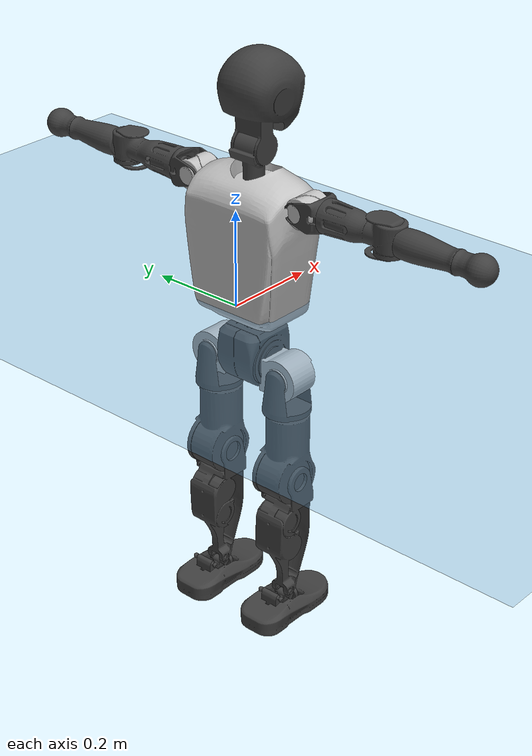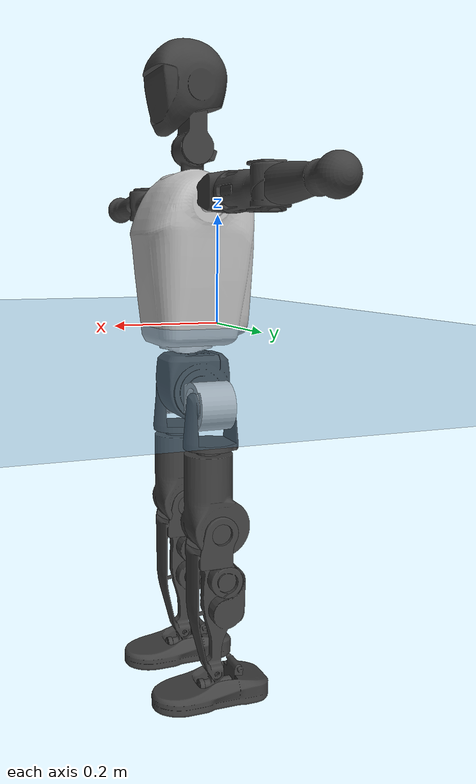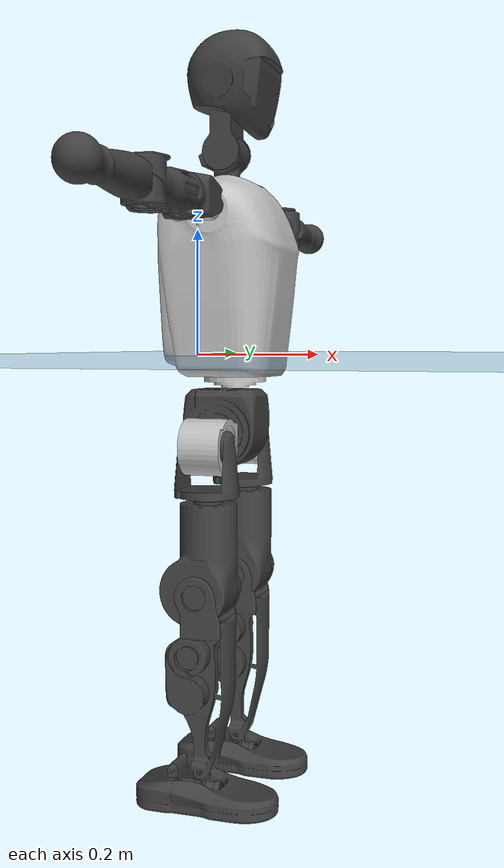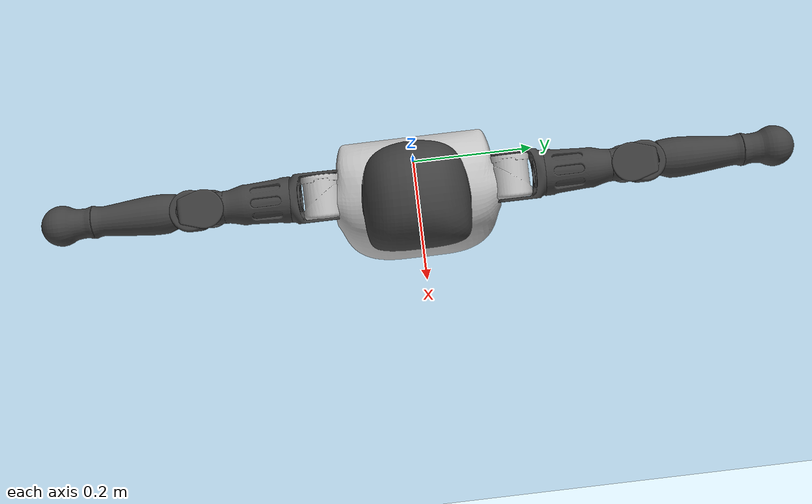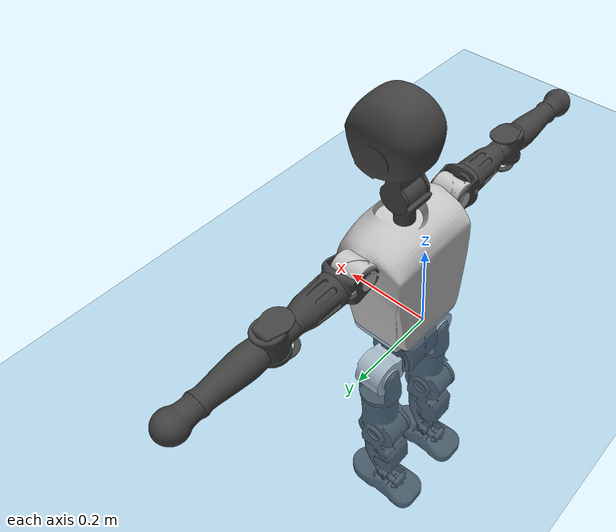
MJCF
<mujoco model="T1">
  <compiler angle="radian" assetdir="assets" balanceinertia="true" inertiafromgeom="false"/>

  <option timestep="0.005" density="1.2" viscosity="2e-05"/>

  <size nkey="1"/>

  <visual>
    <quality shadowsize="8192"/>
    <map shadowclip="0.5"/>
  </visual>

  <default>
    <default class="/">
      <joint armature="0.01" damping="0.01" frictionloss="0.1"/>
      <geom contype="0" conaffinity="0" group="1" solref="-1000 -80"/>
      <site size="0.01 0.005 0.005" group="5"/>
      <general forcelimited="true" biastype="affine" gainprm="25" biasprm="0 -25 -0.6"/>
      <default class="t1">
        <geom rgba="0.25 0.25 0.25 1"/>
        <default class="visual">
          <geom type="mesh" group="2"/>
        </default>
        <default class="collision">
          <geom group="3"/>
        </default>
        <default class="foot">
          <geom size="0.1115 0.05 0.015" type="box" condim="6" group="4" priority="1" solimp="0.015 1 0.015"/>
        </default>
        <default class="reward_collision_sphere">
          <geom group="5" rgba="1 0 0 1"/>
        </default>
      </default>
    </default>
  </default>

  <asset>
    <texture type="skybox" colorspace="auto" name="//unnamed_texture_0" builtin="gradient" rgb1="0.95 0.95 0.95" rgb2="0.95 0.95 0.95" width="100" height="600"/>
    <texture type="2d" colorspace="auto" name="texplane" builtin="checker" rgb1="0.345 0.575 0.748" rgb2="0.345 0.575 0.748" markrgb="1 1 1" width="512" height="512"/>
    <material name="MatPlane" class="/" texture="texplane" texuniform="true" texrepeat="2 2" specular="0.9"/>
    <mesh name="Trunk" class="/" file="Trunk.stl"/>
    <mesh name="H1" class="/" file="H1.stl"/>
    <mesh name="H2" class="/" file="H2.stl"/>
    <mesh name="AL1" class="/" file="AL1.stl"/>
    <mesh name="AL2" class="/" file="AL2.stl"/>
    <mesh name="AL3" class="/" file="AL3.stl"/>
    <mesh name="left_hand_link" class="/" file="left_hand_link.stl"/>
    <mesh name="AR1" class="/" file="AR1.stl"/>
    <mesh name="AR2" class="/" file="AR2.stl"/>
    <mesh name="AR3" class="/" file="AR3.stl"/>
    <mesh name="right_hand_link" class="/" file="right_hand_link.stl"/>
    <mesh name="Waist" class="/" file="Waist.stl"/>
    <mesh name="Hip_Pitch_Left" class="/" file="Hip_Pitch_Left.stl"/>
    <mesh name="Hip_Roll_Left" class="/" file="Hip_Roll_Left.stl"/>
    <mesh name="Hip_Yaw_Left" class="/" file="Hip_Yaw_Left.stl"/>
    <mesh name="Shank_Left" class="/" file="Shank_Left.stl"/>
    <mesh name="Ankle_Cross_Left" class="/" file="Ankle_Cross_Left.stl"/>
    <mesh name="left_foot_link" class="/" file="left_foot_link.stl"/>
    <mesh name="Hip_Pitch_Right" class="/" file="Hip_Pitch_Right.stl"/>
    <mesh name="Hip_Roll_Right" class="/" file="Hip_Roll_Right.stl"/>
    <mesh name="Hip_Yaw_Right" class="/" file="Hip_Yaw_Right.stl"/>
    <mesh name="Shank_Right" class="/" file="Shank_Right.stl"/>
    <mesh name="Ankle_Cross_Right" class="/" file="Ankle_Cross_Right.stl"/>
    <mesh name="right_foot_link" class="/" file="right_foot_link.stl"/>
  </asset>

  <worldbody>
    <geom name="floor" class="/" size="100 100 0.125" type="plane" group="0" material="MatPlane"/>
    <light name="toplight_shadow" class="/" pos="0 0 5" dir="0.0990148 0.0990148 -0.990148" type="directional" ambient="0.04 0.04 0.04" diffuse="0.55 0.55 0.55" specular="0.12 0.12 0.12"/>
    <light name="toplight_fill" class="/" pos="0 0 5" dir="0.0990148 0.0990148 -0.990148" type="directional" castshadow="false" ambient="0.04 0.04 0.04" diffuse="0.3 0.3 0.3" specular="0.08 0.08 0.08"/>
    <body name="trunk" childclass="t1" pos="0.000937827 -0.00018712 -0.000907776" quat="1 6.44671e-05 0.000349435 -0.000186849">
      <inertial pos="0.0433184 0.000262872 0.109714" quat="0.999957 0.00221733 -0.00902108 4.71024e-05" mass="8.42656" diaginertia="0.0293604 0.0359218 0.0709641"/>
      <joint name="//unnamed_joint_0" type="free" armature="0" damping="0" frictionloss="0"/>
      <geom name="//unnamed_geom_1" class="visual" rgba="0.76 0.76 0.76 1" mesh="Trunk"/>
      <geom name="//unnamed_geom_2" class="collision" size="0.0677048 0.0902731 0.13541" pos="0.0478439 0 0.126317" type="box"/>
      <geom name="//unnamed_geom_3" class="reward_collision_sphere" size="0.103814" pos="0.0478439 0 0.105264"/>
      <geom name="//unnamed_geom_4" class="reward_collision_sphere" size="0.013541" pos="0.0478439 0.0729427 0"/>
      <geom name="//unnamed_geom_5" class="reward_collision_sphere" size="0.013541" pos="0.0478439 -0.0729427 0"/>
      <geom name="//unnamed_geom_6" class="reward_collision_sphere" size="0.013541" pos="0.0478439 0.0918219 0.189476"/>
      <geom name="//unnamed_geom_7" class="reward_collision_sphere" size="0.013541" pos="0.0478439 -0.0918219 0.189476"/>
      <site name="imu" pos="0.0031732 -0.00415782 -0.00118832" size="0.00902731"/>
      <camera name="track" pos="0 -1.7163 0" quat="0.707107 0.707107 0 0" mode="trackcom"/>
      <camera name="ego_camera" pos="0.0972827 0 0.442111" quat="-0.5 -0.5 0.5 0.5"/>
      <body name="H1" pos="0.0491034 -0.000784647 0.254951" quat="1 -0.000466048 -0.000166813 -3.44278e-05">
        <inertial pos="-0.00205191 -0.00159476 0.0596654" quat="0.759156 -0.0111686 0.00567058 0.650789" mass="0.326356" diaginertia="7.83566e-05 0.000103627 0.000195874"/>
        <joint name="AAHead_yaw" pos="0 0 0" axis="-0.00425523 -0.000661845 0.999991" stiffness="0.00118894" range="-1.55869 1.58022" armature="0.00864676" damping="0.00779896" frictionloss="0.0916822"/>
        <geom name="//unnamed_geom_8" class="visual" mesh="H1"/>
        <body name="H2" pos="-0.00027784 -0.000626784 0.0644672" quat="1 6.8704e-05 -7.66808e-05 -0.000236453">
          <inertial pos="0.00559616 -0.000769091 0.103625" quat="0.988601 0.105432 -0.0747031 -0.0772782" mass="0.464148" diaginertia="0.000655379 0.000876389 0.00223262"/>
          <joint name="Head_pitch" pos="0 0 0" axis="-1.93926e-05 -0.999999 0.0010066" range="-1.23076 0.331827" armature="0.00918821" damping="0.00456479" frictionloss="0.0941296"/>
          <geom name="//unnamed_geom_9" class="visual" mesh="H2"/>
          <geom name="//unnamed_geom_10" class="collision" size="0.0722185" pos="0.00797399 0 0.115791"/>
          <geom name="//unnamed_geom_11" class="reward_collision_sphere" size="0.0812458" pos="0.015948 0 0.105264"/>
        </body>
      </body>
      <body name="AL1" pos="0.047347 0.0925404 0.23092" quat="1 -0.00011347 0.000416517 -6.87213e-07">
        <inertial pos="-0.000171604 0.0381768 -0.00148386" quat="0.501421 0.492972 -0.506103 0.499415" mass="0.399069" diaginertia="0.000452903 0.000613786 0.000385111"/>
        <joint name="Left_Shoulder_Pitch" pos="0 0 0" axis="0.00389605 0.999985 0.00375373" range="-3.30713 1.23799" armature="0.00911021" damping="0.00496309" frictionloss="0.0926059"/>
        <geom name="//unnamed_geom_12" class="visual" rgba="0.76 0.76 0.76 1" mesh="AL1"/>
        <body name="AL2" pos="7.85941e-05 0.041024 -4.95983e-05" quat="1 0.000758997 -0.000409772 -0.000125303">
          <inertial pos="0.00333243 0.0307288 -0.000342567" quat="0.488363 0.511599 -0.487789 0.511693" mass="0.117576" diaginertia="0.000129882 0.000162375 0.000227826"/>
          <joint name="Left_Shoulder_Roll" pos="0 0 0" axis="-0.999985 -0.00261109 0.00479617" range="-1.55326 1.74602" armature="0.00946618" damping="0" frictionloss="0.0943251"/>
          <geom name="//unnamed_geom_13" class="visual" mesh="AL2"/>
          <body name="AL3" pos="0.000673622 0.0539965 -0.000409836" quat="1 -7.83104e-05 0.000457048 7.44923e-05">
            <inertial pos="-0.00038149 0.0728043 0.000628027" quat="0.70461 0.709586 0.00333926 -0.000457343" mass="0.776407" diaginertia="0.00418146 0.00606729 0.000796026"/>
            <joint name="Left_Elbow_Pitch" pos="0 0 0" axis="-5.29471e-05 -1 -0.000271491" range="-2.23799 2.23942" armature="0.00952789" damping="0.000691235" frictionloss="0.089928"/>
            <geom name="//unnamed_geom_14" class="visual" mesh="AL3"/>
            <geom name="//unnamed_geom_15" class="collision" size="0.0270819 0.0677048" pos="0 0.0429074 0" quat="0.707105 0.707108 0 0" type="cylinder"/>
            <geom name="//unnamed_geom_16" class="reward_collision_sphere" size="0.0324983"/>
            <body name="left_hand_link" pos="-0.000346445 0.126374 -0.000438753" quat="1 -0.000221921 8.73134e-05 -0.000142677">
              <inertial pos="1.81826e-05 0.0937441 0.000220285" quat="0.708867 0.705339 -0.000551537 0.00193875" mass="0.238205" diaginertia="0.00259953 0.00376298 0.000278189"/>
              <joint name="Left_Elbow_Yaw" pos="0 0 0" axis="0.000177019 0.00021322 1" range="-2.44295 -0.00503377" armature="0.00927067" damping="0.0105501" frictionloss="0.0866237"/>
              <geom name="//unnamed_geom_17" class="visual" mesh="left_hand_link"/>
              <geom name="//unnamed_geom_18" class="collision" size="0.0270819 0.078989" pos="0 0.111559 0" quat="0.707105 0.707108 0 0" type="cylinder"/>
              <geom name="//unnamed_geom_19" class="reward_collision_sphere" size="0.0451365"/>
              <geom name="//unnamed_geom_20" class="reward_collision_sphere" size="0.0315956" pos="0 0.0943964 0"/>
              <geom name="//unnamed_geom_21" class="reward_collision_sphere" size="0.0315956" pos="0 0.184502 0"/>
            </body>
          </body>
        </body>
      </body>
      <body name="AR1" pos="0.045094 -0.0916419 0.23034" quat="1 0.000144071 0.000250087 0.000170912">
        <inertial pos="-0.00136901 -0.0397739 0.000954392" quat="0.504895 0.495895 -0.503133 0.49601" mass="0.389398" diaginertia="0.000441105 0.000598737 0.000378549"/>
        <joint name="Right_Shoulder_Pitch" pos="0 0 0" axis="6.30665e-05 -1 -0.000138109" range="-1.21865 3.31114" armature="0.00939585" damping="0.00307334" frictionloss="0.0909002"/>
        <geom name="//unnamed_geom_22" class="visual" rgba="0.76 0.76 0.76 1" mesh="AR1"/>
        <body name="AR2" pos="-0.00104827 -0.0392136 0.000595059" quat="1 5.83997e-06 -4.43552e-06 -2.83596e-06">
          <inertial pos="0.00252806 -0.032486 -0.000795792" quat="0.515042 0.485507 -0.510517 0.488248" mass="0.115808" diaginertia="0.000129384 0.000157508 0.000225621"/>
          <joint name="Right_Shoulder_Roll" pos="0 0 0" axis="-0.999979 0.00196998 -0.00625422" stiffness="0.00419773" range="-1.73172 1.58777" armature="0.0090269" damping="0.00235546" frictionloss="0.0897054"/>
          <geom name="//unnamed_geom_23" class="visual" mesh="AR2"/>
          <body name="AR3" pos="-0.000679258 -0.0526209 0.000916954" quat="1 -0.000252623 -0.000130669 4.90626e-05">
            <inertial pos="-0.00124943 -0.0724163 -0.000435023" quat="0.708086 0.706126 -0.000443423 0.000716312" mass="0.744813" diaginertia="0.00409851 0.00587881 0.000786309"/>
            <joint name="Right_Elbow_Pitch" pos="0 0 0" axis="0.000894786 0.999989 0.00457381" range="-2.27423 2.27207" armature="0.00952679" damping="0.00805311" frictionloss="0.0858551"/>
            <geom name="//unnamed_geom_24" class="visual" mesh="AR3"/>
            <geom name="//unnamed_geom_25" class="collision" size="0.0270819 0.0677048" pos="0 -0.0429074 0" quat="0.707105 0.707108 0 0" type="cylinder"/>
            <geom name="//unnamed_geom_26" class="reward_collision_sphere" size="0.0324983"/>
            <body name="right_hand_link" pos="-0.000740491 -0.125703 -0.000406425" quat="1 0.000157228 -5.46401e-06 6.99956e-05">
              <inertial pos="-0.000573377 -0.0940286 -0.000643582" quat="0.706875 0.7073 0.000520988 0.00733809" mass="0.246292" diaginertia="0.00259682 0.00378675 0.000274993"/>
              <joint name="Right_Elbow_Yaw" pos="0 0 0" axis="-0.00314602 0.00344478 0.999989" range="-0.0212771 2.46793" armature="0.00881951" damping="0.0111357" frictionloss="0.0885389"/>
              <geom name="//unnamed_geom_27" class="visual" mesh="right_hand_link"/>
              <geom name="//unnamed_geom_28" class="collision" size="0.0270819 0.078989" pos="0 -0.111559 0" quat="0.707105 0.707108 0 0" type="cylinder"/>
              <geom name="//unnamed_geom_29" class="reward_collision_sphere" size="0.0451365"/>
              <geom name="//unnamed_geom_30" class="reward_collision_sphere" size="0.0315956" pos="0 -0.0943964 0"/>
              <geom name="//unnamed_geom_31" class="reward_collision_sphere" size="0.0315956" pos="0 -0.184502 0"/>
            </body>
          </body>
        </body>
      </body>
      <body name="Waist" pos="0.0490579 -0.00113635 -0.120894" quat="1 -0.000216988 -0.000248754 0.000345445">
        <inertial pos="0.00137031 -0.00101151 0.00684918" quat="0.984236 8.6458e-05 -0.176859 -0.000494981" mass="1.91221" diaginertia="0.00172379 0.00245211 0.0061056"/>
        <joint name="Waist" pos="0 0 0" axis="0.000514207 -0.00363281 0.999993" range="-1.56912 1.56651" armature="0.00862412" damping="0.0156055" frictionloss="0.0881561"/>
        <geom name="//unnamed_geom_32" class="visual" mesh="Waist"/>
        <body name="Hip_Pitch_Left" pos="5.51945e-06 0.0916624 0.0010716" quat="1 7.13283e-05 0.000117527 0.000128406">
          <inertial pos="0.00227357 -0.00746773 -0.0201996" quat="0.974232 0.224562 0.0208719 0.00286097" mass="0.748072" diaginertia="0.000582745 0.000678578 0.00160372"/>
          <joint name="Left_Hip_Pitch" pos="0 0 0" axis="-0.00242827 0.999995 -0.00192432" stiffness="0.00105968" range="-1.80474 1.59028" armature="0.0088635" damping="0.00235176" frictionloss="0.0885494"/>
          <geom name="//unnamed_geom_33" class="visual" rgba="0.76 0.76 0.76 1" mesh="Hip_Pitch_Left"/>
          <body name="Hip_Roll_Left" pos="0.000680295 -0.000539042 -0.0204244" quat="1 0.000130399 0.000193357 0.000212739">
            <inertial pos="0.00168775 0.000371628 -0.0563385" quat="0.706262 -0.0051494 -0.00562136 0.70791" mass="0.274601" diaginertia="0.00055885 0.000688767 0.000649913"/>
            <joint name="Left_Hip_Roll" pos="0 0 0" axis="-0.999983 0.0048933 -0.00302555" stiffness="0.000551718" range="-1.56157 0.182779" armature="0.00904436" damping="0.0106134" frictionloss="0.091665"/>
            <geom name="//unnamed_geom_34" class="visual" mesh="Hip_Roll_Left"/>
            <geom name="//unnamed_geom_35" class="reward_collision_sphere" size="0.0496502"/>
            <body name="Hip_Yaw_Left" pos="0.00176359 -0.000260425 -0.0867538" quat="1 -8.74437e-06 -0.000162379 -2.92983e-05">
              <inertial pos="-0.00551018 -0.000493546 -0.0945894" quat="0.700923 -0.0353553 -0.0287145 0.711781" mass="1.60978" diaginertia="0.0084118 0.0119822 0.00342487"/>
              <joint name="Left_Hip_Yaw" pos="0 0 0" axis="0.00222453 -0.000577882 -0.999997" stiffness="0.00083145" range="-1.02555 1.00551" armature="0.00893113" damping="0.00572574" frictionloss="0.0889284"/>
              <geom name="//unnamed_geom_36" class="visual" mesh="Hip_Yaw_Left"/>
              <geom name="//unnamed_geom_37" class="collision" size="0.0451365 0.0722185" type="cylinder"/>
              <body name="Shank_Left" pos="-0.0108336 0.000942838 -0.142245" quat="1 -0.000126387 0.000268281 -0.00013191">
                <inertial pos="-0.00473103 -0.000886075 -0.131063" quat="0.997747 0.00104114 -0.0236223 0.0627914" mass="1.27202" diaginertia="0.0114188 0.0160859 0.00245007"/>
                <joint name="Left_Knee_Pitch" pos="0 0 0" axis="6.97821e-05 1 0.000546685" range="-0.0201805 2.33827" armature="0.00873169" damping="0.00463741" frictionloss="0.0989506"/>
                <geom name="//unnamed_geom_38" class="visual" mesh="Shank_Left"/>
                <geom name="//unnamed_geom_39" class="collision" size="0.0451365 0.0677048" pos="0 0 -0.126317" type="cylinder"/>
                <geom name="//unnamed_geom_40" class="reward_collision_sphere" size="0.0586775"/>
                <body name="Ankle_Cross_Left" pos="-0.000944198 -0.000375193 -0.294618" quat="1 -4.70529e-06 9.55456e-05 6.21268e-05">
                  <inertial pos="-0.00275307 7.39279e-05 -0.00923656" quat="0.442357 0.550207 0.551316 0.444571" mass="0.0527442" diaginertia="9.14645e-06 1.14414e-05 1.42299e-05"/>
                  <joint name="Left_Ankle_Pitch" pos="0 0 0" axis="-0.00776152 0.999966 0.00269116" range="-0.852798 0.352502" armature="0.00898722" damping="0.00973397" frictionloss="0.0946557"/>
                  <geom name="//unnamed_geom_41" class="visual" mesh="Ankle_Cross_Left"/>
                  <body name="left_foot_link" pos="-0.0010005 -0.000868162 -0.0124691" quat="1 -0.000306092 -0.000608413 0.00047234">
                    <inertial pos="0.000871088 -0.000243202 -0.00867138" quat="-0.000171074 0.621785 0.00024182 0.783188" mass="0.495772" diaginertia="0.000861411 0.00109677 0.00279178"/>
                    <joint name="Left_Ankle_Roll" pos="0 0 0" axis="-1 0.000423257 -8.71285e-05" range="-0.441499 0.4578" armature="0.00903669" damping="0.00708251" frictionloss="0.0864856"/>
                    <geom name="//unnamed_geom_42" class="visual" mesh="left_foot_link"/>
                    <geom name="left_foot" class="foot" size="0.103439 0.0448714 0.0129042" pos="0.00797399 0 -0.0157897"/>
                    <geom name="//unnamed_geom_44" class="reward_collision_sphere" size="0.046942" pos="0.00797399 0 -0.0157897"/>
                    <geom name="//unnamed_geom_45" class="reward_collision_sphere" size="0.0270819" pos="0.0757529 -0.0197374 -0.0157897"/>
                    <geom name="//unnamed_geom_46" class="reward_collision_sphere" size="0.0270819" pos="-0.0558179 -0.0197374 -0.0157897"/>
                    <site name="left_foot" class="foot" pos="0.00797399 0 -0.0157897" size="0.00902731"/>
                  </body>
                </body>
              </body>
            </body>
          </body>
        </body>
        <body name="Hip_Pitch_Right" pos="-0.000610718 -0.0902378 2.71988e-05" quat="1 9.34991e-05 -8.05065e-06 4.36352e-06">
          <inertial pos="0.00126584 0.00700075 -0.0184763" quat="0.97347 -0.228316 0.0145148 -0.00406596" mass="0.752803" diaginertia="0.000582063 0.000678268 0.0015973"/>
          <joint name="Right_Hip_Pitch" pos="0 0 0" axis="0.000878936 -0.999998 -0.00165405" stiffness="0.000162388" range="-1.57122 1.79092" armature="0.00892561" damping="0.00643543" frictionloss="0.0892177"/>
          <geom name="//unnamed_geom_47" class="visual" rgba="0.76 0.76 0.76 1" mesh="Hip_Pitch_Right"/>
          <body name="Hip_Roll_Right" pos="0.000382972 -0.000134656 -0.0200671" quat="1 -1.6084e-05 -0.00014617 -4.87654e-05">
            <inertial pos="0.000653354 0.000757904 -0.056607" quat="0.704707 -0.00586286 -0.00273587 0.709469" mass="0.28635" diaginertia="0.000566462 0.000707714 0.000674951"/>
            <joint name="Right_Hip_Roll" pos="0 0 0" axis="-1 -0.000443085 0.000796646" range="-0.18747 1.56542" armature="0.00857993" damping="0.00877761" frictionloss="0.0944327"/>
            <geom name="//unnamed_geom_48" class="visual" mesh="Hip_Roll_Right"/>
            <geom name="//unnamed_geom_49" class="reward_collision_sphere" size="0.0496502"/>
            <body name="Hip_Yaw_Right" pos="0.000767207 -0.000359093 -0.086717" quat="1 -9.94071e-05 -9.75527e-07 0.000134779">
              <inertial pos="-0.00550205 -0.00108512 -0.0926802" quat="0.713774 -0.0324961 -0.0330297 0.698842" mass="1.62417" diaginertia="0.00838212 0.0119366 0.00336601"/>
              <joint name="Right_Hip_Yaw" pos="0 0 0" axis="6.69736e-06 -0.00452885 -0.99999" stiffness="0.00421294" range="-1.01091 1.00816" armature="0.00834915" damping="0.00938398" frictionloss="0.088963"/>
              <geom name="//unnamed_geom_50" class="visual" mesh="Hip_Yaw_Right"/>
              <geom name="//unnamed_geom_51" class="collision" size="0.0451365 0.0722185" type="cylinder"/>
              <body name="Shank_Right" pos="-0.0096606 -0.000601022 -0.140322" quat="1 9.24622e-05 0.000152211 -1.79251e-05">
                <inertial pos="-0.00353288 0.00166474 -0.129814" quat="0.999266 -0.00013457 -0.0238922 -0.0299522" mass="1.34077" diaginertia="0.0118251 0.0167485 0.00261622"/>
                <joint name="Right_Knee_Pitch" pos="0 0 0" axis="-8.96351e-06 -1 -4.6404e-05" range="-2.34219 0.00131262" armature="0.00890534" damping="0.0106201" frictionloss="0.0859182"/>
                <geom name="//unnamed_geom_52" class="visual" mesh="Shank_Right"/>
                <geom name="//unnamed_geom_53" class="collision" size="0.0451365 0.0677048" pos="0 0 -0.126317" type="cylinder"/>
                <geom name="//unnamed_geom_54" class="reward_collision_sphere" size="0.0586775"/>
                <body name="Ankle_Cross_Right" pos="-0.000355624 -0.00139457 -0.295029" quat="1 1.34667e-05 2.74045e-05 7.77277e-05">
                  <inertial pos="-0.00354043 -0.000477045 -0.0086342" quat="0.44365 0.548194 0.550477 0.446803" mass="0.0537417" diaginertia="9.33771e-06 1.19529e-05 1.48145e-05"/>
                  <joint name="Right_Ankle_Pitch" pos="0 0 0" axis="-0.00954066 -0.999951 0.00249376" stiffness="0.000435717" range="-0.334658 0.865573" armature="0.00909371" damping="0.00793876" frictionloss="0.0878158"/>
                  <geom name="//unnamed_geom_55" class="visual" mesh="Ankle_Cross_Right"/>
                  <body name="right_foot_link" pos="-7.44056e-05 -0.0012459 -0.0126915" quat="1 -4.68109e-05 -6.12155e-06 -5.90628e-05">
                    <inertial pos="0.00142893 3.33166e-06 -0.0101474" quat="-6.48838e-05 0.620757 -6.0915e-05 0.784003" mass="0.506638" diaginertia="0.000890403 0.00111012 0.00286439"/>
                    <joint name="Right_Ankle_Roll" pos="0 0 0" axis="-0.999992 0.000681769 0.00395964" range="-0.436717 0.456145" armature="0.00868845" damping="0.00672064" frictionloss="0.0850265"/>
                    <geom name="//unnamed_geom_56" class="visual" mesh="right_foot_link"/>
                    <geom name="right_foot" class="foot" size="0.0987506 0.0444952 0.0139329" pos="0.00797399 0 -0.0157897"/>
                    <geom name="//unnamed_geom_58" class="reward_collision_sphere" size="0.0361092"/>
                    <geom name="//unnamed_geom_59" class="reward_collision_sphere" size="0.0270819" pos="0.00797399 0 -0.0157897"/>
                    <geom name="//unnamed_geom_60" class="reward_collision_sphere" size="0.0270819" pos="0.0757529 0.0197374 -0.0157897"/>
                    <geom name="//unnamed_geom_61" class="reward_collision_sphere" size="0.0270819" pos="-0.0558179 0.0197374 -0.0157897"/>
                    <site name="right_foot" class="foot" pos="0.00797399 0 -0.0157897" size="0.00902731"/>
                  </body>
                </body>
              </body>
            </body>
          </body>
        </body>
      </body>
    </body>
  </worldbody>

  <contact>
    <pair class="/" geom1="floor" geom2="left_foot" name="//unnamed_contact_0"/>
    <pair class="/" geom1="floor" geom2="right_foot" name="//unnamed_contact_1"/>
  </contact>

  <actuator>
    <general name="AAHead_yaw" class="/" joint="AAHead_yaw" forcerange="-6.15093 6.15093" gainprm="22.7909" biasprm="0 -22.7909 -0.532776"/>
    <general name="Head_pitch" class="/" joint="Head_pitch" forcerange="-6.11681 6.11681" gainprm="22.7909" biasprm="0 -22.7909 -0.532776"/>
    <general name="Left_Shoulder_Pitch" class="/" joint="Left_Shoulder_Pitch" forcerange="-16.0287 16.0287" gainprm="22.7909" biasprm="0 -22.7909 -0.532776"/>
    <general name="Left_Shoulder_Roll" class="/" joint="Left_Shoulder_Roll" forcerange="-15.6978 15.6978" gainprm="22.7909" biasprm="0 -22.7909 -0.532776"/>
    <general name="Left_Elbow_Pitch" class="/" joint="Left_Elbow_Pitch" forcerange="-16.3669 16.3669" gainprm="22.7909" biasprm="0 -22.7909 -0.532776"/>
    <general name="Left_Elbow_Yaw" class="/" joint="Left_Elbow_Yaw" forcerange="-17.3605 17.3605" gainprm="22.7909" biasprm="0 -22.7909 -0.532776"/>
    <general name="Right_Shoulder_Pitch" class="/" joint="Right_Shoulder_Pitch" forcerange="-16.3389 16.3389" gainprm="22.7909" biasprm="0 -22.7909 -0.532776"/>
    <general name="Right_Shoulder_Roll" class="/" joint="Right_Shoulder_Roll" forcerange="-16.2956 16.2956" gainprm="22.7909" biasprm="0 -22.7909 -0.532776"/>
    <general name="Right_Elbow_Pitch" class="/" joint="Right_Elbow_Pitch" forcerange="-15.8892 15.8892" gainprm="22.7909" biasprm="0 -22.7909 -0.532776"/>
    <general name="Right_Elbow_Yaw" class="/" joint="Right_Elbow_Yaw" forcerange="-16.1665 16.1665" gainprm="22.7909" biasprm="0 -22.7909 -0.532776"/>
    <general name="Waist" class="/" joint="Waist" forcerange="-27.1461 27.1461" gainprm="22.7909" biasprm="0 -22.7909 -0.532776"/>
    <general name="Left_Hip_Pitch" class="/" joint="Left_Hip_Pitch" forcerange="-39.4377 39.4377" gainprm="22.7909" biasprm="0 -22.7909 -0.532776"/>
    <general name="Left_Hip_Roll" class="/" joint="Left_Hip_Roll" forcerange="-26.5555 26.5555" gainprm="22.7909" biasprm="0 -22.7909 -0.532776"/>
    <general name="Left_Hip_Yaw" class="/" joint="Left_Hip_Yaw" forcerange="-26.4636 26.4636" gainprm="22.7909" biasprm="0 -22.7909 -0.532776"/>
    <general name="Left_Knee_Pitch" class="/" joint="Left_Knee_Pitch" forcerange="-53.9974 53.9974" gainprm="22.7909" biasprm="0 -22.7909 -0.532776"/>
    <general name="Left_Ankle_Pitch" class="/" joint="Left_Ankle_Pitch" forcerange="-17.8405 17.8405" gainprm="22.7909" biasprm="0 -22.7909 -0.532776"/>
    <general name="Left_Ankle_Roll" class="/" joint="Left_Ankle_Roll" forcerange="-13.5678 13.5678" gainprm="22.7909" biasprm="0 -22.7909 -0.532776"/>
    <general name="Right_Hip_Pitch" class="/" joint="Right_Hip_Pitch" forcerange="-40.5993 40.5993" gainprm="22.7909" biasprm="0 -22.7909 -0.532776"/>
    <general name="Right_Hip_Roll" class="/" joint="Right_Hip_Roll" forcerange="-26.9578 26.9578" gainprm="22.7909" biasprm="0 -22.7909 -0.532776"/>
    <general name="Right_Hip_Yaw" class="/" joint="Right_Hip_Yaw" forcerange="-26.9537 26.9537" gainprm="22.7909" biasprm="0 -22.7909 -0.532776"/>
    <general name="Right_Knee_Pitch" class="/" joint="Right_Knee_Pitch" forcerange="-55.9845 55.9845" gainprm="22.7909" biasprm="0 -22.7909 -0.532776"/>
    <general name="Right_Ankle_Pitch" class="/" joint="Right_Ankle_Pitch" forcerange="-18.0712 18.0712" gainprm="22.7909" biasprm="0 -22.7909 -0.532776"/>
    <general name="Right_Ankle_Roll" class="/" joint="Right_Ankle_Roll" forcerange="-13.1661 13.1661" gainprm="22.7909" biasprm="0 -22.7909 -0.532776"/>
  </actuator>

  <sensor>
    <gyro site="imu" name="imu_angular_velocity"/>
    <velocimeter site="imu" name="imu_linear_velocity"/>
    <framelinvel objtype="site" objname="left_foot" name="left_foot_global_linear_velocity"/>
    <framelinvel objtype="site" objname="right_foot" name="right_foot_global_linear_velocity"/>
  </sensor>

  <keyframe>
    <key name="home" qpos="0 0 0.6385 1 0 0 0 0 0 0 1.4 0 -0.4 0 -1.4 0 0.4 0 -0.4 0 0 0.8 -0.4 0 0.4 0 0 -0.8 0.4 0"/>
  </keyframe>
</mujoco>
